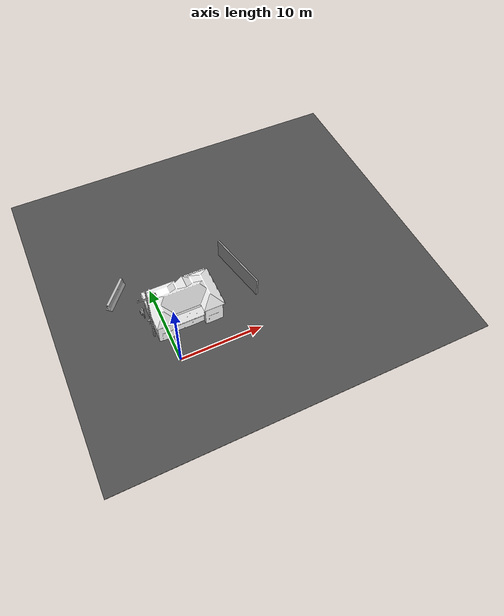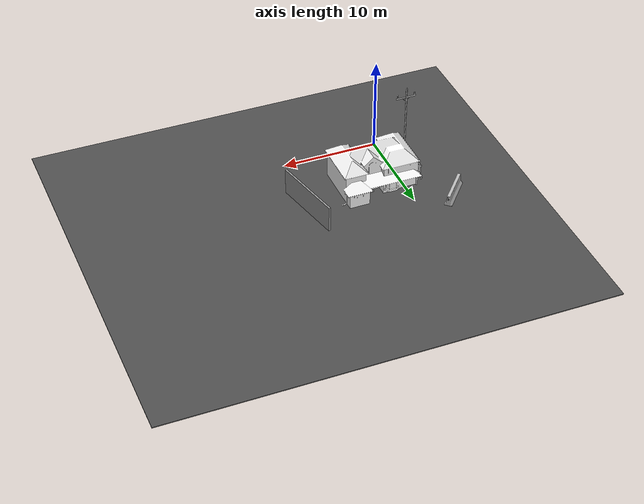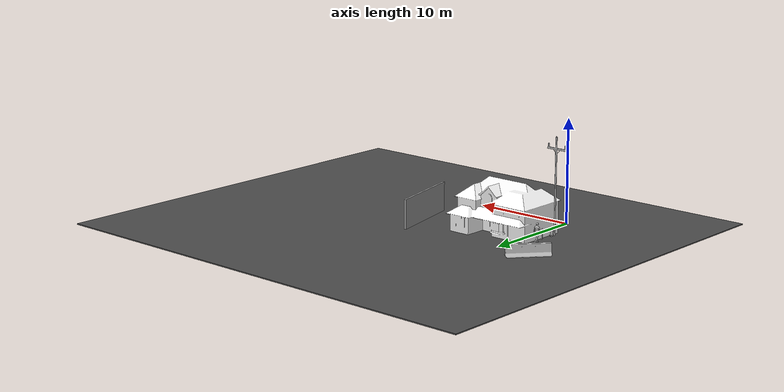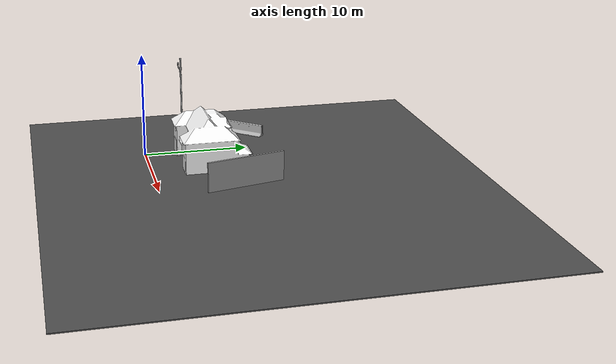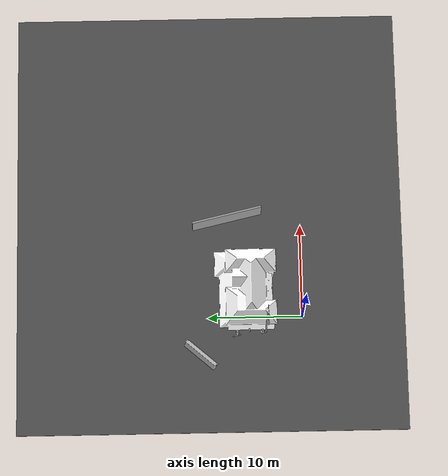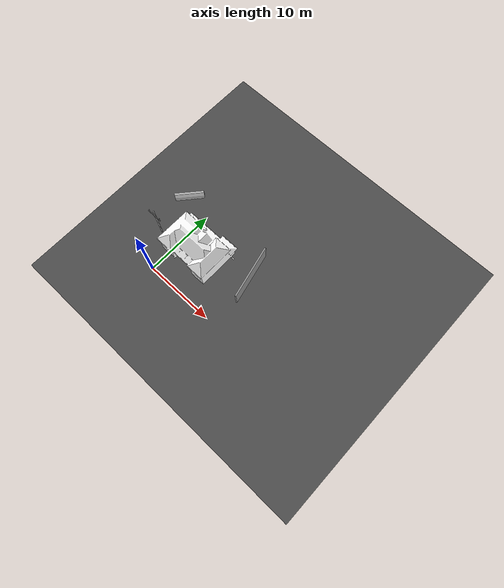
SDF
<sdf version="1.6">
 <world name="default">
  <plugin name="gazebo_occupancy_map" filename="libgazebo_2Dmap_plugin.so">
   <map_resolution>0.1</map_resolution>
   <map_height>0.3</map_height>
   <map_size_x>40</map_size_x>
   <map_size_y>40</map_size_y>
  </plugin>
  <light name="sun" type="directional">
   <pose>0 0 10 0 -0 0</pose>
   <diffuse>0.8 0.8 0.8 1</diffuse>
   <specular>0.1 0.1 0.1 1</specular>
   <attenuation>
    <range>1000</range>
    <constant>0.9</constant>
    <linear>0.01</linear>
    <quadratic>0.001</quadratic>
   </attenuation>
   <direction>-0.5 0.5 -1</direction>
  </light>
  <gravity>0 0 -9.8</gravity>
  <magnetic_field>6e-06 2.3e-05 -4.2e-05</magnetic_field>
  <atmosphere type="adiabatic"/>
  <physics name="default_physics" default="0" type="ode">
   <max_step_size>0.001</max_step_size>
   <real_time_factor>1</real_time_factor>
   <real_time_update_rate>1000</real_time_update_rate>
  </physics>
  <scene><ambient>0.4 0.4 0.4 1</ambient><background>0.7 0.7 0.7 1</background><shadows>1</shadows></scene>
  <spherical_coordinates>
   <surface_model>EARTH_WGS84</surface_model>
   <latitude_deg>0</latitude_deg>
   <longitude_deg>0</longitude_deg>
   <elevation>0</elevation>
   <heading_deg>0</heading_deg>
  </spherical_coordinates>
  <model name="asphalt_plane">
   <static>1</static>
   <link name="link">
    <collision name="collision"><geometry><box><size>45.953 40.9948 0.1</size></box></geometry></collision>
    <visual name="visual">
     <cast_shadows>0</cast_shadows>
     <geometry><box><size>45.953 40.9948 0.1</size></box></geometry>
     <material>
      <script>
       <uri>model://asphalt_plane/materials/scripts</uri>
       <uri>model://asphalt_plane/materials/textures</uri>
       <name>vrc/asphalt</name>
      </script>
     </material>
    </visual>
   </link>
   <pose>10.7653 9.67973 0 0 -0 0</pose>
  </model>
  <model name="grey_wall">
   <static>1</static>
   <link name="link">
    <pose>0 0 1.4 0 -0 0</pose>
    <collision name="collision"><geometry><box><size>7.5 0.2 2.8</size></box></geometry></collision>
    <visual name="visual">
     <cast_shadows>0</cast_shadows>
     <geometry><box><size>7.5 0.2 2.8</size></box></geometry>
     <material>
      <script>
       <uri>model://grey_wall/materials/scripts</uri>
       <uri>model://grey_wall/materials/textures</uri>
       <name>vrc/grey_wall</name>
      </script>
     </material>
    </visual>
   </link>
   <pose>10.5735 7.83334 0.10528 0 -0 1.79901</pose>
  </model>
  <model name="jersey_barrier_clone">
   <static>1</static>
   <link name="link">
    <visual name="visual">
     <geometry>
      <mesh><uri>model://jersey_barrier/meshes/jersey_barrier.dae</uri><scale>1 1 1</scale></mesh>
     </geometry>
    </visual>
    <collision name="upright">
     <pose>0 0 0.5715 0 -0 0</pose>
     <geometry><box><size>4.06542 0.3063 1.143</size></box></geometry>
    </collision>
    <collision name="base">
     <pose>0 0 0.032258 0 -0 0</pose>
     <geometry><box><size>4.06542 0.8107 0.064516</size></box></geometry>
    </collision>
    <collision name="base2">
     <pose>0 0 0.1 0 -0 0</pose>
     <geometry><box><size>4.06542 0.65 0.1</size></box></geometry>
    </collision>
    <collision name="base3">
     <pose>0 0 0.2 0 -0 0</pose>
     <geometry><box><size>4.06542 0.5 0.1</size></box></geometry>
    </collision>
    <collision name="left-angle">
     <pose>0 -0.224 0.2401 0.9 -0 0</pose>
     <geometry><box><size>4.06542 0.5 0.064516</size></box></geometry>
    </collision>
    <collision name="right-angle">
     <pose>0 0.224 0.2401 -0.9 0 0</pose>
     <geometry><box><size>4.06542 0.5 0.064516</size></box></geometry>
    </collision>
   </link>
   <pose>-3.95811 10.7849 0.134331 0 -0 0.854816</pose>
  </model>
  <model name="brick_box_3x1x3">
   <static>1</static>
   <link name="chassis">
    <pose>0 0 1.5 0 -0 0</pose>
    <collision name="collision"><geometry><box><size>3 1 3</size></box></geometry></collision>
    <visual name="visual">
     <geometry><mesh><uri>model://brick_box_3x1x3/meshes/simple_box.dae</uri><scale>1 1 1</scale></mesh></geometry>
     <material>
      <script>
       <uri>model://brick_box_3x1x3/materials/scripts</uri>
       <uri>model://brick_box_3x1x3/materials/textures</uri>
       <name>BrickBox/Diffuse</name>
      </script>
     </material>
    </visual>
   </link>
   <pose>5.4915 4.36382 0 0 -0 3.12584</pose>
  </model>
  <model name="House 2_0">
   <static>1</static>
   <link name="link">
    <collision name="collision">
     <geometry><mesh><uri>model://house_2/meshes/house_2.dae</uri><scale>1 1 1</scale></mesh></geometry>
    </collision>
    <visual name="visual">
     <geometry><mesh><uri>model://house_2/meshes/house_2.dae</uri><scale>1 1 1</scale></mesh></geometry>
     <material>
      <script>
       <uri>model://house_2/materials/scripts</uri>
       <uri>model://house_2/materials/textures</uri>
       <name>House_2/Diffuse</name>
      </script>
     </material>
    </visual>
   </link>
   <pose>2.00239 5.51494 0 0 -0 0</pose>
  </model>
  <model name="telephone_pole">
   <static>1</static>
   <link name="link">
    <collision name="collision_pole">
     <pose>0 0 4.572 0 -0 0</pose>
     <geometry><cylinder><radius>0.0779475</radius><length>9.144</length></cylinder></geometry>
    </collision>
    <collision name="collision_cross">
     <pose>0 -0.098806 8.04836 0 -0 0</pose>
     <geometry><box><size>2.11606 0.041763 0.177806</size></box></geometry>
    </collision>
    <visual name="visual">
     <geometry>
      <mesh><uri>model://telephone_pole/meshes/telephone_pole.dae</uri><scale>1 1 1</scale></mesh>
     </geometry>
    </visual>
   </link>
   <pose>-1.59582 3.93205 0 0 -0 0</pose>
  </model>
  <model name="person_walking">
   <link name="link">
    <inertial>
     <pose>0 0 0.95 0 -0 0</pose>
     <mass>80</mass>
     <inertia><ixx>27.82</ixx><ixy>0</ixy><ixz>0</ixz><iyy>24.88</iyy><iyz>0</iyz><izz>4.57</izz></inertia>
    </inertial>
    <collision name="bottom">
     <pose>0 0 0.01 0 -0 0</pose>
     <geometry><box><size>0.35 0.75 0.02</size></box></geometry>
    </collision>
    <collision name="person">
     <pose>0 0 -0.02 0 -0 0</pose>
     <geometry><mesh><uri>model://person_walking/meshes/walking.dae</uri><scale>1 1 1</scale></mesh></geometry>
    </collision>
    <visual name="visual">
     <pose>0 0 -0.02 0 -0 0</pose>
     <geometry><mesh><uri>model://person_walking/meshes/walking.dae</uri><scale>1 1 1</scale></mesh></geometry>
    </visual>
   </link>
   <pose>-1.90902 6.96071 0.05 1e-06 -0 0.006232</pose>
  </model>
  <model name="Mailbox">
   <link name="link">
    <collision name="collision">
     <geometry><mesh><uri>model://mailbox/meshes/mailbox.dae</uri><scale>1 1 1</scale></mesh></geometry>
    </collision>
    <visual name="visual">
     <geometry><mesh><uri>model://mailbox/meshes/mailbox.dae</uri><scale>1 1 1</scale></mesh></geometry>
     <material>
      <script>
       <uri>model://mailbox/materials/scripts</uri>
       <uri>model://mailbox/materials/textures</uri>
       <name>Mailbox/Diffuse</name>
      </script>
     </material>
    </visual>
    <inertial>
     <inertia><ixx>1</ixx><ixy>0</ixy><ixz>0</ixz><iyy>1</iyy><iyz>0</iyz><izz>1</izz></inertia>
     <mass>1</mass>
    </inertial>
   </link>
   <pose>-1.5274 5.65689 0.050002 -8.1e-05 -5e-06 1.6787</pose>
  </model>
  <model name="fire_hydrant">
   <static>1</static>
   <link name="link">
    <collision name="collision">
     <geometry><mesh><uri>model://fire_hydrant/meshes/fire_hydrant.dae</uri><scale>1 1 1</scale></mesh></geometry>
    </collision>
    <visual name="visual">
     <geometry><mesh><uri>model://fire_hydrant/meshes/fire_hydrant.dae</uri><scale>1 1 1</scale></mesh></geometry>
    </visual>
   </link>
   <pose>-1.52462 4.28442 0 0 -0 0</pose>
  </model>
 </world>
</sdf>
